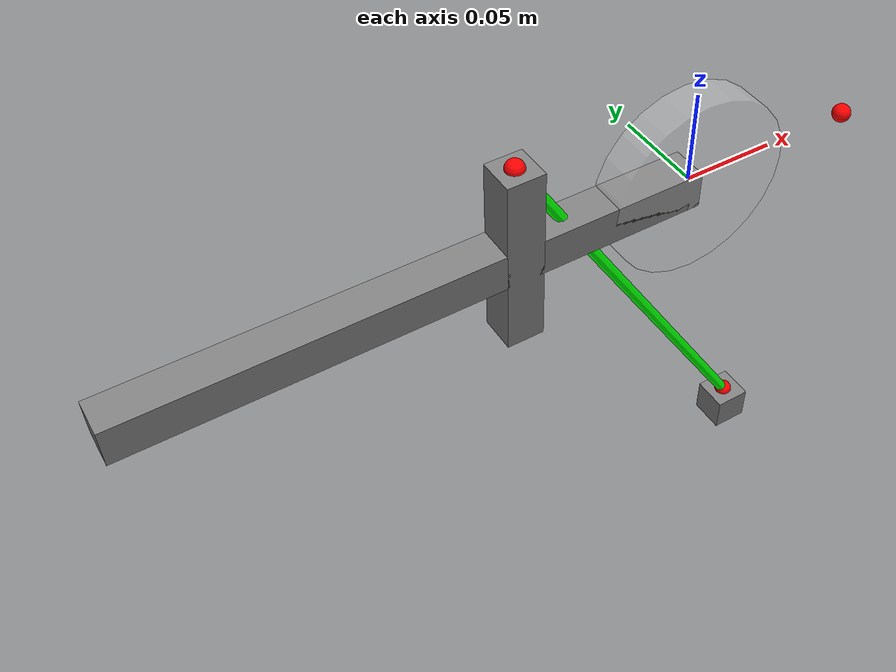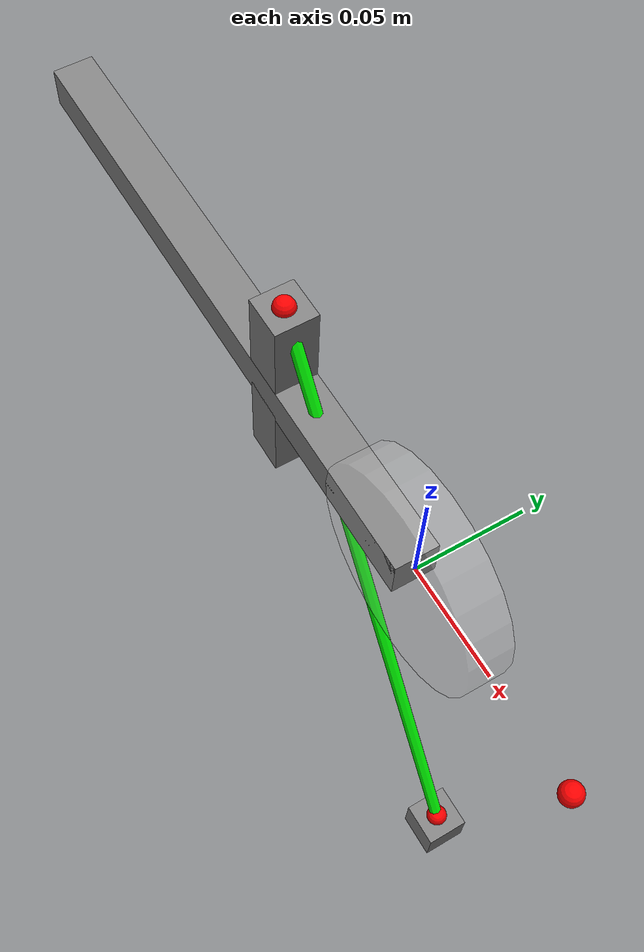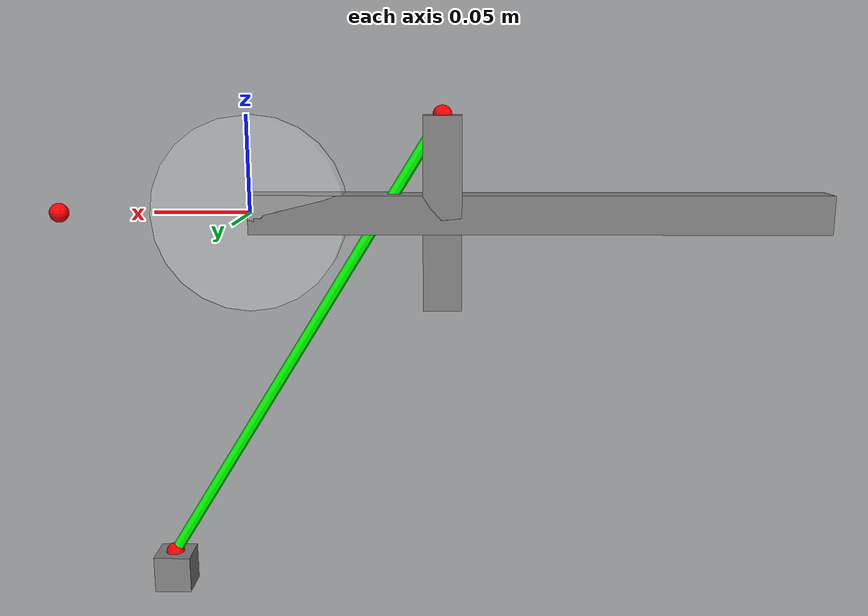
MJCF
<mujoco>
  <compiler autolimits="true"/>

  <default>
    <site type="sphere" rgba="1 0 0 1" size="0.005"/>
    <tendon rgba="0 1 0 1"/>
  </default>

  <visual>
    <headlight diffuse=".7 .7 .7"/>
  </visual>

  <worldbody>
    <body name="arm">
      <joint name="arm" axis="0 1 0" damping=".04"/>
      <geom name="shoulder" type="cylinder" size=".05 .01" zaxis="0 1 0" rgba="1 1 1 0.1"/>
      <geom name="arm" type="box" size=".01" fromto="0 0 0 -.3 0 0"/>
      <geom name="crossbar" type="box" size=".01" fromto="-.1 0 -.05 -.1 0 .05"/>
      <site name="arm" pos="-.1 0 .05"/>
    </body>
    <site name="right" pos=".1 0 0"/>
    <body name="slider" pos=".05 0 -.2">
      <joint name="slider" type="slide" damping="1"/>
      <geom name="slider" type="box" size=".01 .01 .01"/>
      <site name="slider" pos="0 0 .01"/>
    </body>
  </worldbody>

  <tendon>
    <spatial name="rope" range="0 .35">
      <site site="slider"/>
      <geom geom="shoulder" sidesite="right"/>
      <site site="arm"/>
    </spatial>
  </tendon>

  <actuator>
    <position name="slider" joint="slider" ctrlrange="-.05 .05" kp="100"/>
  </actuator>
</mujoco>
